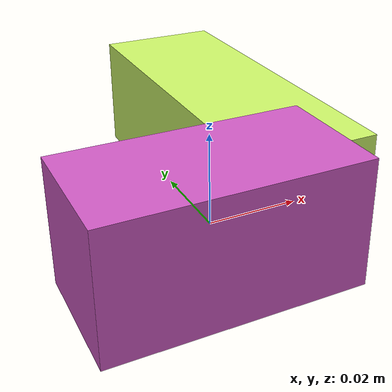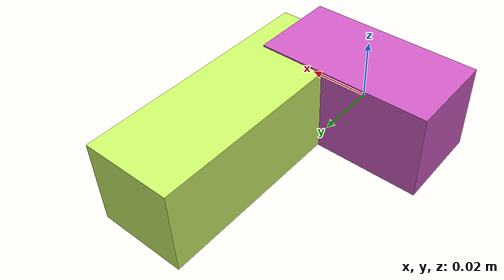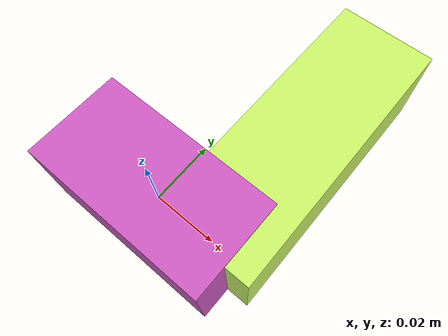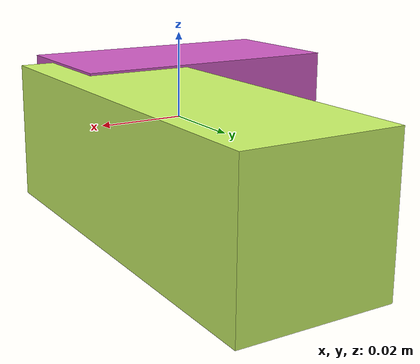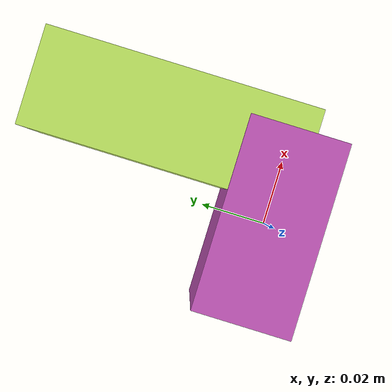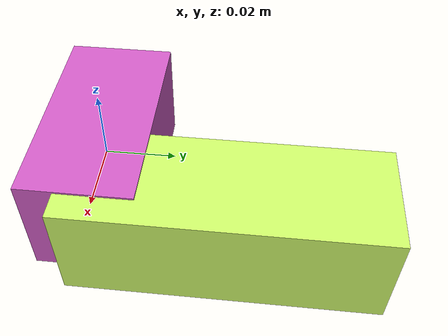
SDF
<sdf version="1.4"><world name="default"><model name="object0"><link name="link1"><pose>0 0 0 0 0 0</pose><inertial><pose>0 0 0 0 0 0</pose><mass>0.03175371717140549</mass><inertia><ixx>4.7630575757108226e-06</ixx><ixy>0</ixy><iyy>1.1531399362402464e-05</iyy><ixz>0</ixz><iyz>0</iyz><izz>1.1531399362402464e-05</izz></inertia></inertial><visual name="link1_visual"><pose>0 0  0 0 0 0</pose><geometry><box><size>0.0588031799470472 0.03 0.03</size></box></geometry><material><diffuse>0.8166720457217118 0.3608163666868362 0.77204953825346 1</diffuse></material></visual><collision><pose>0 0  0 0 0 0</pose><geometry><box><size>0.0588031799470472 0.03 0.03</size></box></geometry></collision></link><link name="link2"><pose>0.021651617864811762 0.036729009693337034 0 0 0 0</pose><inertial><pose>0 0 0 0 0 0</pose><mass>0.045134420933496844</mass><inertia><ixx>2.9438904810075458e-05</ixx><ixy>0</ixy><iyy>6.5482522371015e-06</iyy><ixz>0</ixz><iyz>0</iyz><izz>2.9660815712998484e-05</izz></inertia></inertial><visual name="link2_visual"><pose>0 0  0 0 0 0</pose><geometry><box><size>0.03 0.08358226098795712 0.028999999999999998</size></box></geometry><material><diffuse>0.8023549462333566 0.9681262063232388 0.4106047881055035 1</diffuse></material></visual><collision><pose>0 0  0 0 0 0</pose><geometry><box><size>0.03 0.08358226098795712 0.028999999999999998</size></box></geometry></collision></link><joint name="link_joint_0" type="fixed"><parent>link1</parent><child>link2</child><pose>0 0 0 0 0 0</pose><axis><xyz>0 0 1</xyz></axis></joint></model></world></sdf>
